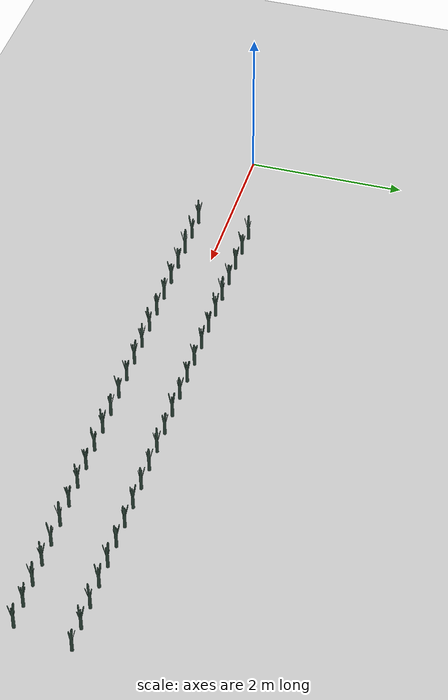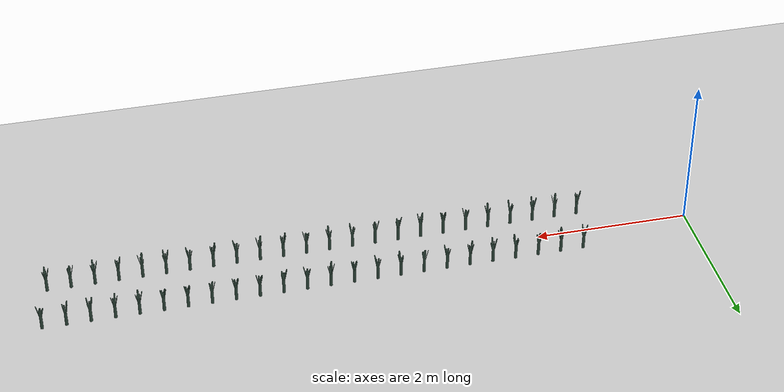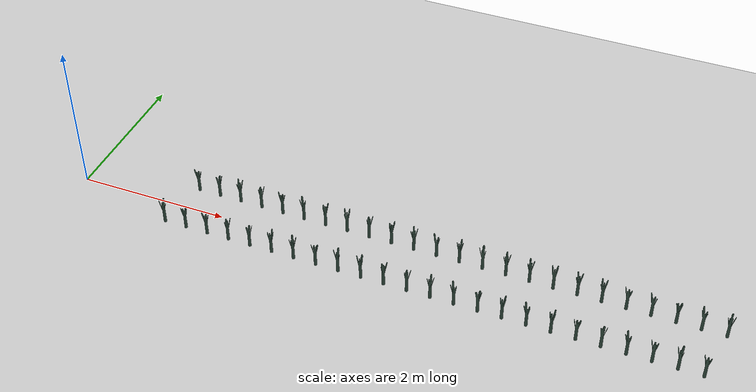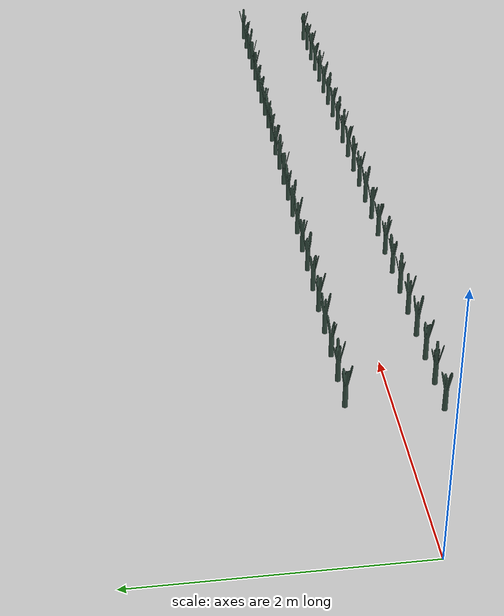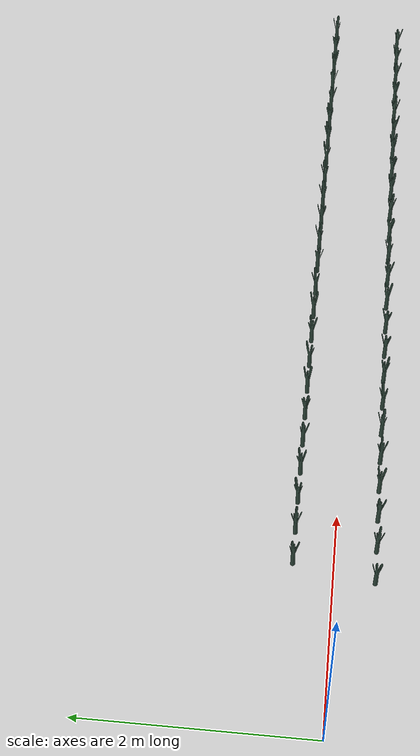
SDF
<sdf version="1.6">
 <world name="default">
  <light name="sun" type="directional">
   <pose>0 0 10 0 -0 0</pose>
   <diffuse>0.5 0.5 0.5 1</diffuse>
   <specular>0.1 0.1 0.1 1</specular>
   <attenuation>
    <range>1000</range>
    <constant>0.9</constant>
    <linear>0.01</linear>
    <quadratic>0.001</quadratic>
   </attenuation>
   <direction>0.9 0.5 -1</direction>
  </light>
  <scene><background>130 200 255 1</background><ambient>130 140 140 1</ambient></scene>
  <include><uri>model://dirt_plane</uri></include>
  <include>
   <uri>model://Leek</uri>
   <pose>1.500000 0.350000 0.15 0 0 -147.441819</pose>
   <static>0</static>
  </include>
  <include><uri>model://Leek</uri><pose>1.800000 0.350000 0.15 0 0 -45.636938</pose><static>0</static></include>
  <include><uri>model://Leek</uri><pose>2.100000 0.350000 0.15 0 0 -18.118059</pose><static>0</static></include>
  <include>
   <uri>model://Leek</uri>
   <pose>2.400000 0.350000 0.15 0 0 -133.107706</pose>
   <static>0</static>
  </include>
  <include><uri>model://Leek</uri><pose>2.700000 0.350000 0.15 0 0 166.568413</pose><static>0</static></include>
  <include><uri>model://Leek</uri><pose>3.000000 0.350000 0.15 0 0 -3.922266</pose><static>0</static></include>
  <include><uri>model://Leek</uri><pose>3.300000 0.350000 0.15 0 0 162.679788</pose><static>0</static></include>
  <include><uri>model://Leek</uri><pose>3.600000 0.350000 0.15 0 0 88.931901</pose><static>0</static></include>
  <include><uri>model://Leek</uri><pose>3.900000 0.350000 0.15 0 0 99.325955</pose><static>0</static></include>
  <include><uri>model://Leek</uri><pose>4.200000 0.350000 0.15 0 0 -76.123138</pose><static>0</static></include>
  <include><uri>model://Leek</uri><pose>4.500000 0.350000 0.15 0 0 138.573264</pose><static>0</static></include>
  <include><uri>model://Leek</uri><pose>4.800000 0.350000 0.15 0 0 153.551621</pose><static>0</static></include>
  <include><uri>model://Leek</uri><pose>5.100000 0.350000 0.15 0 0 94.020962</pose><static>0</static></include>
  <include><uri>model://Leek</uri><pose>5.400000 0.350000 0.15 0 0 -98.742080</pose><static>0</static></include>
  <include><uri>model://Leek</uri><pose>5.700000 0.350000 0.15 0 0 -81.479645</pose><static>0</static></include>
  <include><uri>model://Leek</uri><pose>6.000000 0.350000 0.15 0 0 -56.203581</pose><static>0</static></include>
  <include><uri>model://Leek</uri><pose>6.300000 0.350000 0.15 0 0 -11.606012</pose><static>0</static></include>
  <include><uri>model://Leek</uri><pose>6.600000 0.350000 0.15 0 0 -5.719101</pose><static>0</static></include>
  <include><uri>model://Leek</uri><pose>6.900000 0.350000 0.15 0 0 157.716185</pose><static>0</static></include>
  <include><uri>model://Leek</uri><pose>7.200000 0.350000 0.15 0 0 -84.829279</pose><static>0</static></include>
  <include><uri>model://Leek</uri><pose>7.500000 0.350000 0.15 0 0 153.559166</pose><static>0</static></include>
  <include>
   <uri>model://Leek</uri>
   <pose>7.800000 0.350000 0.15 0 0 -178.383708</pose>
   <static>0</static>
  </include>
  <include><uri>model://Leek</uri><pose>8.100000 0.350000 0.15 0 0 171.935886</pose><static>0</static></include>
  <include><uri>model://Leek</uri><pose>8.400000 0.350000 0.15 0 0 144.418924</pose><static>0</static></include>
  <include><uri>model://Leek</uri><pose>1.376893 -0.350000 0.15 0 0 58.370126</pose><static>0</static></include>
  <include>
   <uri>model://Leek</uri>
   <pose>1.676893 -0.350000 0.15 0 0 -39.598272</pose>
   <static>0</static>
  </include>
  <include>
   <uri>model://Leek</uri>
   <pose>1.976893 -0.350000 0.15 0 0 172.910941</pose>
   <static>0</static>
  </include>
  <include><uri>model://Leek</uri><pose>2.276893 -0.350000 0.15 0 0 5.262502</pose><static>0</static></include>
  <include>
   <uri>model://Leek</uri>
   <pose>2.576893 -0.350000 0.15 0 0 111.548285</pose>
   <static>0</static>
  </include>
  <include><uri>model://Leek</uri><pose>2.876893 -0.350000 0.15 0 0 6.098036</pose><static>0</static></include>
  <include>
   <uri>model://Leek</uri>
   <pose>3.176893 -0.350000 0.15 0 0 -62.446240</pose>
   <static>0</static>
  </include>
  <include>
   <uri>model://Leek</uri>
   <pose>3.476893 -0.350000 0.15 0 0 -58.884210</pose>
   <static>0</static>
  </include>
  <include><uri>model://Leek</uri><pose>3.776893 -0.350000 0.15 0 0 20.514762</pose><static>0</static></include>
  <include>
   <uri>model://Leek</uri>
   <pose>4.076893 -0.350000 0.15 0 0 -136.833330</pose>
   <static>0</static>
  </include>
  <include>
   <uri>model://Leek</uri>
   <pose>4.376893 -0.350000 0.15 0 0 -32.281602</pose>
   <static>0</static>
  </include>
  <include>
   <uri>model://Leek</uri>
   <pose>4.676893 -0.350000 0.15 0 0 -139.603292</pose>
   <static>0</static>
  </include>
  <include>
   <uri>model://Leek</uri>
   <pose>4.976893 -0.350000 0.15 0 0 -12.519206</pose>
   <static>0</static>
  </include>
  <include>
   <uri>model://Leek</uri>
   <pose>5.276893 -0.350000 0.15 0 0 -123.402051</pose>
   <static>0</static>
  </include>
  <include>
   <uri>model://Leek</uri>
   <pose>5.576893 -0.350000 0.15 0 0 -121.374843</pose>
   <static>0</static>
  </include>
  <include><uri>model://Leek</uri><pose>5.876893 -0.350000 0.15 0 0 30.855976</pose><static>0</static></include>
  <include>
   <uri>model://Leek</uri>
   <pose>6.176893 -0.350000 0.15 0 0 -79.329645</pose>
   <static>0</static>
  </include>
  <include><uri>model://Leek</uri><pose>6.476893 -0.350000 0.15 0 0 43.391607</pose><static>0</static></include>
  <include>
   <uri>model://Leek</uri>
   <pose>6.776893 -0.350000 0.15 0 0 -71.810566</pose>
   <static>0</static>
  </include>
  <include>
   <uri>model://Leek</uri>
   <pose>7.076893 -0.350000 0.15 0 0 -20.654879</pose>
   <static>0</static>
  </include>
  <include><uri>model://Leek</uri><pose>7.376893 -0.350000 0.15 0 0 46.163804</pose><static>0</static></include>
  <include>
   <uri>model://Leek</uri>
   <pose>7.676893 -0.350000 0.15 0 0 -109.840552</pose>
   <static>0</static>
  </include>
  <include>
   <uri>model://Leek</uri>
   <pose>7.976893 -0.350000 0.15 0 0 -174.592066</pose>
   <static>0</static>
  </include>
  <include>
   <uri>model://Leek</uri>
   <pose>8.276893 -0.350000 0.15 0 0 -103.664087</pose>
   <static>0</static>
  </include>
 </world>
</sdf>

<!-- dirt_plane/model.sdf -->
<sdf version="1.4">
<model name="dirt_plane">
  <static>true</static>
    <link name="link">
      <collision name="collision">
        <geometry>
          <plane>
            <normal>0 0 1</normal>
            <size>100 100</size>
          </plane>
        </geometry>
        <surface>
          <friction>
            <ode>
              <mu>0.99</mu>
              <mu2>0.99</mu2>
            </ode>
          </friction>
        </surface>
      </collision>
      <visual name="visual">
        <cast_shadows>false</cast_shadows>
        <geometry>
          <plane>
            <normal>0 0 1</normal>
            <size>100 100</size>
          </plane>
        </geometry>
        <material>
          <script>
            <uri>model://ground_plane/materials/scripts/my_ground_plane.material</uri>
            <uri>model://ground_plane/materials/textures</uri>
            <name>my_ground_plane/Dirt</name>
          </script>
        </material>
      </visual>
    </link>
  </model>
</sdf>

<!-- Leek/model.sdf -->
<sdf version='1.6'>
  <model name='Leek'>
    <link name='link'>
      <pose frame=''>0 0 0 0 -0 0</pose>
      <inertial>
        <mass>1</mass>
        <inertia>
          <ixx>0.145833</ixx>
          <ixy>0</ixy>
          <ixz>0</ixz>
          <iyy>0.145833</iyy>
          <iyz>0</iyz>
          <izz>0.125</izz>
        </inertia>
        <pose frame=''>0 0 0 0 -0 0</pose>
      </inertial>
      <self_collide>0</self_collide>
      <kinematic>0</kinematic>
      <gravity>1</gravity>
      <visual name='visual'>
        <geometry>
          <mesh>
            <uri>model://Leek/Poireau.dae</uri>
            <scale>1 1 1</scale>
          </mesh>
        </geometry>
        <material>
          <script>
            <name>Gazebo/Grey</name>
            <uri>file://media/materials/scripts/gazebo.material</uri>
          </script>
          <ambient>0.3 0.6 0.5 0</ambient>
          <diffuse>0.2 0.3 0.25 0</diffuse>
          <specular>0 0 0 1</specular>
          <emissive>0 0 0 1</emissive>
          <shader type='vertex'>
            <normal_map>__default__</normal_map>
          </shader>
        </material>
        <pose frame=''>0 0 -0.08 0 -0 0</pose>
        <cast_shadows>1</cast_shadows>
        <transparency>0</transparency>
      </visual>
      <collision name='collision'>
        <laser_retro>0</laser_retro>
        <max_contacts>10</max_contacts>
        <pose frame=''>0 0 0 0 -0 0</pose>
        <geometry>
          <cylinder>
            <radius>0.02</radius>
            <length>0.25</length>
          </cylinder>
        </geometry>
        <surface>
          <friction>
            <ode>
              <mu>1</mu>
              <mu2>1</mu2>
              <fdir1>0 0 0</fdir1>
              <slip1>0</slip1>
              <slip2>0</slip2>
            </ode>
            <torsional>
              <coefficient>1</coefficient>
              <patch_radius>0</patch_radius>
              <surface_radius>0</surface_radius>
              <use_patch_radius>1</use_patch_radius>
              <ode>
                <slip>0</slip>
              </ode>
            </torsional>
          </friction>
          <bounce>
            <restitution_coefficient>0</restitution_coefficient>
            <threshold>1e+06</threshold>
          </bounce>
          <contact>
            <collide_without_contact>0</collide_without_contact>
            <collide_without_contact_bitmask>1</collide_without_contact_bitmask>
            <collide_bitmask>1</collide_bitmask>
            <ode>
              <soft_cfm>0</soft_cfm>
              <soft_erp>0.2</soft_erp>
              <kp>1e+13</kp>
              <kd>1</kd>
              <max_vel>0.01</max_vel>
              <min_depth>0</min_depth>
            </ode>
            <bullet>
              <split_impulse>1</split_impulse>
              <split_impulse_penetration_threshold>-0.01</split_impulse_penetration_threshold>
              <soft_cfm>0</soft_cfm>
              <soft_erp>0.2</soft_erp>
              <kp>1e+13</kp>
              <kd>1</kd>
            </bullet>
          </contact>
        </surface>
      </collision>
    </link>
    <static>0</static>
    <allow_auto_disable>1</allow_auto_disable>
  </model>
</sdf>
